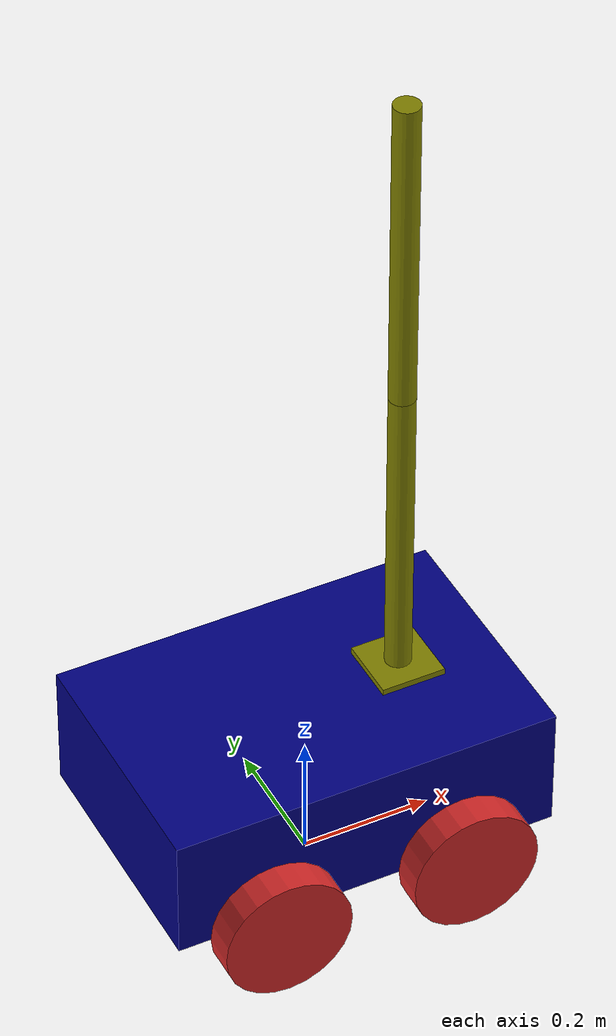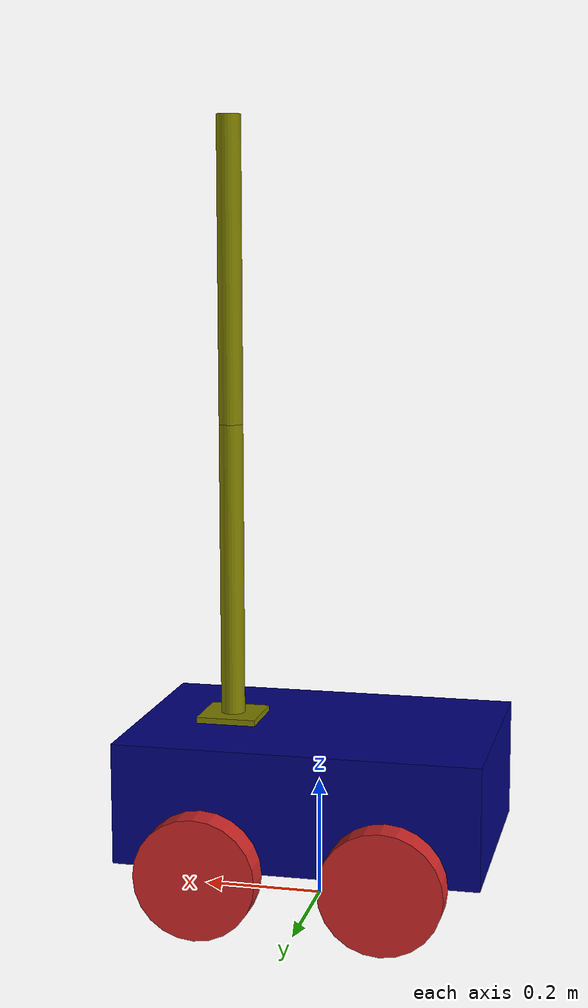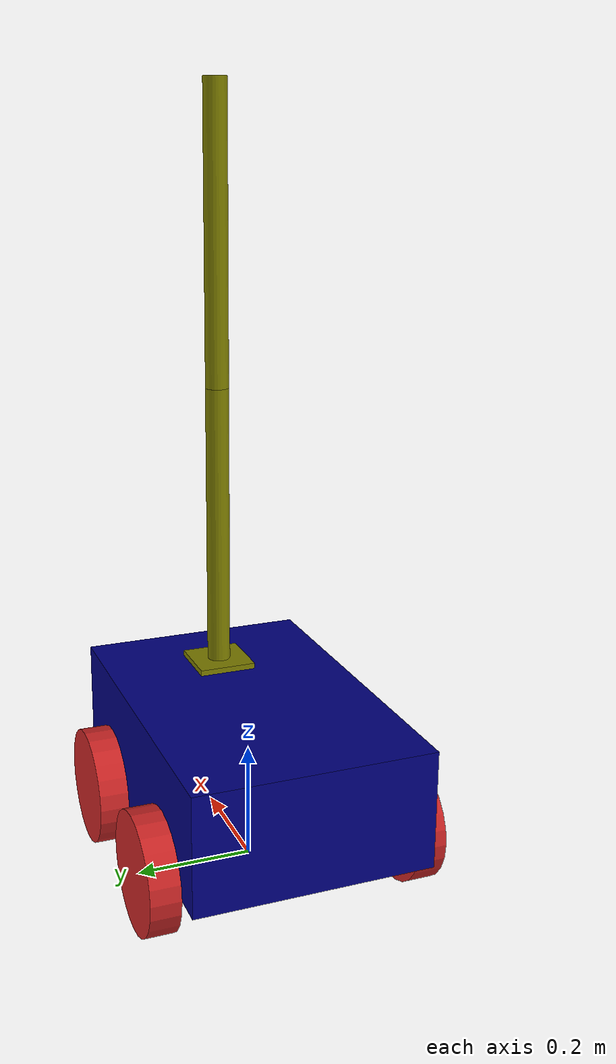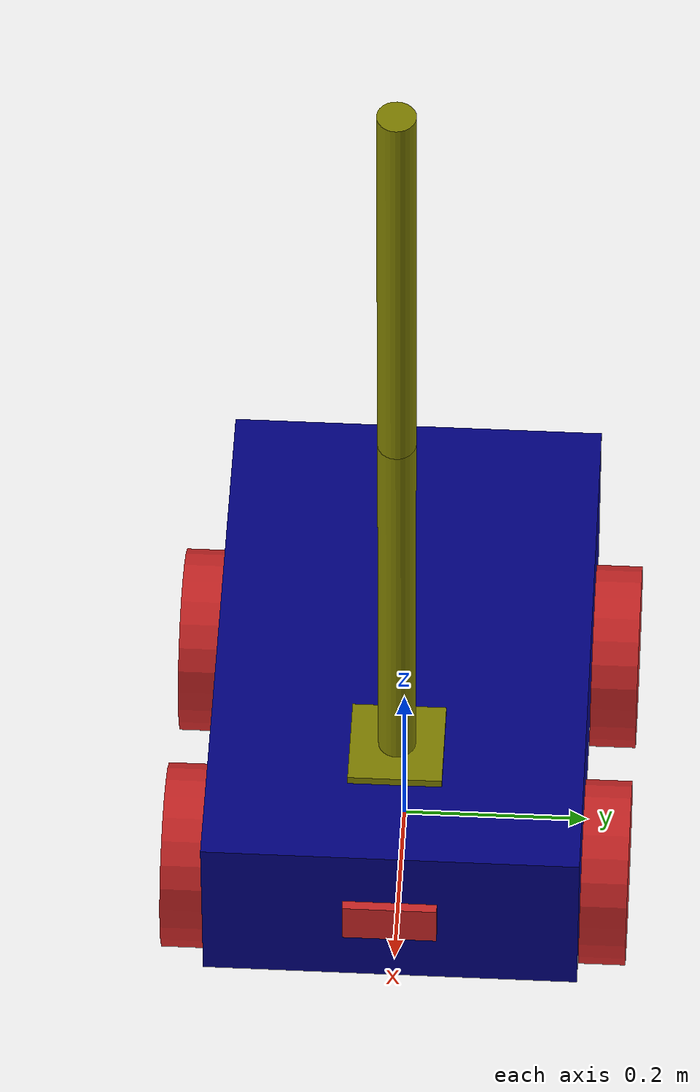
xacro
<?xml version="1.0"?>
<robot name="my_robot" xmlns:xacro="http://www.ros.org/wiki/xacro">

    <xacro:include filename="common_properties.xacro" />
    <xacro:include filename="mobile_base.xacro" />
    <xacro:include filename="mobile_base_gazebo.xacro" />
    <xacro:include filename="camera.xacro" />
    <xacro:include filename="arm.xacro"/>
    <xacro:include filename="arm_gazebo.xacro"/>

</robot>

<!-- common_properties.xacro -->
<robot xmlns:xacro="http://www.ros.org/wiki/xacro">

    <material name="blue">
        <color rgba="0 0 0.5 1" />
    </material>

    <material name="grey">
        <color rgba="0.5 0.5 0.5 1" />
    </material>

    <material name="orange">
        <color rgba="0.5 0.5 0.0 1" />
    </material>

    <xacro:macro name="box_inertia" params="m x y z o_xyz o_rpy">
        <inertial>
            <mass value="${m}" />
            <origin xyz="${o_xyz}" rpy="${o_rpy}" />
            <inertia ixx="${(m/12) * (y*y + z*z)}" ixy="0" ixz="0"
                     iyy="${(m/12) * (x*x + z*z)}" iyz="0"
                     izz="${(m/12) * (x*x + y*y)}" />
        </inertial>
    </xacro:macro>

    <xacro:macro name="cylinder_inertia" params="m r l o_xyz o_rpy">
        <inertial>
            <mass value="${m}" />
            <origin xyz="${o_xyz}" rpy="${o_rpy}" />
            <inertia ixx="${(m/12) * (3*r*r + l*l)}" ixy="0" ixz="0"
                     iyy="${(m/12) * (3*r*r + l*l)}" iyz="0"
                     izz="${(m/2) * (r*r)}" />
        </inertial>
    </xacro:macro>

    <xacro:macro name="sphere_inertia" params="m r o_xyz o_rpy">
        <inertial>
            <mass value="${m}" />
            <origin xyz="${o_xyz}" rpy="${o_rpy}" />
            <inertia ixx="${(2/5) * m * r * r}" ixy="0" ixz="0"
                     iyy="${(2/5) * m * r * r}" iyz="0"
                     izz="${(2/5) * m * r * r}" />
        </inertial>
    </xacro:macro>

</robot>

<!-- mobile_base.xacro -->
<robot xmlns:xacro="http://www.ros.org/wiki/xacro">

    <xacro:property name="base_length" value="0.6" />
    <xacro:property name="base_width" value="0.4" />
    <xacro:property name="base_height" value="0.2" />
    <xacro:property name="wheel_radius" value="0.1" />
    <xacro:property name="wheel_length" value="0.05" />

    <link name="imu_frame"/>

    <joint name="imu_joint" type="fixed">
        <parent link="base_link"/>
        <child link="imu_frame"/>
        <origin xyz="0.0 0.0 0.08" rpy="0.0 0.0 0.0"/>
    </joint>

    <link name="base_link">
        <visual>
            <geometry>
                <box size="${base_length} ${base_width} ${base_height}" />
            </geometry>
            <origin xyz="0 0 ${base_height / 2.0}" rpy="0 0 0" />
            <material name="blue" />
        </visual>
        <collision>
            <geometry>
                <box size="${base_length} ${base_width} ${base_height}" />
            </geometry>
            <origin xyz="0 0 ${base_height / 2.0}" rpy="0 0 0" />
        </collision>
        <xacro:box_inertia m="100.0" l="${2*base_length}" w="${2*base_width}" h="${2*base_height}"
                           xyz="0 0 ${base_height / 2.0}" rpy="0 0 0" />
    </link>

    <xacro:macro name="wheel_link" params="prefix">
        <link name="${prefix}_wheel_link">
            <visual>
                <geometry>
                    <cylinder radius="${wheel_radius}" length="${wheel_length}" />
                </geometry>
                <origin xyz="0 0 0" rpy="${pi / 2.0} 0 0" />
                <material name="red" />
            </visual>
            <collision>
                <geometry>
                    <cylinder radius="${wheel_radius}" length="${wheel_length}" />
                </geometry>
                <origin xyz="0 0 0" rpy="${pi / 2.0} 0 0" />
            </collision>
            <xacro:cylinder_inertia m="10.0" r="${2*wheel_radius}" h="${2*wheel_length}"
                                    xyz="0 0 0" rpy="${pi / 2.0} 0 0" />
        </link>
    </xacro:macro>

    <xacro:wheel_link prefix="right_back" />
    <xacro:wheel_link prefix="left_back" />
    <xacro:wheel_link prefix="right_front" />
    <xacro:wheel_link prefix="left_front" />

    <link name="base_footprint">
    </link>

    <joint name="base_right_back_wheel_joint" type="continuous">
        <parent link="base_link" />
        <child link="right_back_wheel_link" />
        <origin xyz="${-base_length / 4.0} ${-(base_width + wheel_length) / 2.0} 0" rpy="0 0 0" />
        <axis xyz="0 1 0" />
    </joint>

    <joint name="base_right_front_wheel_joint" type="continuous">
        <parent link="base_link" />
        <child link="right_front_wheel_link" />
        <origin xyz="${(base_length) / 4.0} ${-(base_width + wheel_length) / 2.0} 0" rpy="0 0 0" />
        <axis xyz="0 1 0" />
    </joint>

     <joint name="base_left_back_wheel_joint" type="continuous">
        <parent link="base_link" />
        <child link="left_back_wheel_link" />
        <origin xyz="${-base_length / 4.0} ${(base_width + wheel_length) / 2.0} 0" rpy="0 0 0" />
        <axis xyz="0 1 0" />
    </joint>

    <joint name="base_left_front_wheel_joint" type="continuous">
        <parent link="base_link" />
        <child link="left_front_wheel_link" />
        <origin xyz="${base_length / 4.0} ${(base_width + wheel_length) / 2.0} 0" rpy="0 0 0" />
        <axis xyz="0 1 0" />
    </joint>

    <joint name="base_footprint_joint" type="fixed">
        <parent link="base_footprint" />
        <child link="base_link" />
        <origin xyz="0 0 ${wheel_radius}" rpy="0 0 0" />
    </joint>

</robot>

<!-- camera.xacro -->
<robot xmlns:xacro="http://www.ros.org/wiki/xacro">

    <xacro:property name="camera_length" value="0.01" />
    <xacro:property name="camera_width" value="0.1" />
    <xacro:property name="camera_height" value="0.05" />

    <link name="camera_link">
        <visual>
            <geometry>
                <box size="${camera_length} ${camera_width} ${camera_height}" />
            </geometry>
            <material name="red" />
        </visual>
        <collision>
            <geometry>
                <box size="${camera_length} ${camera_width} ${camera_height}" />
            </geometry>
        </collision>
        <xacro:box_inertia m="0.1" l="${camera_length}" w="${camera_width}" h="${camera_height}"
                           xyz="0 0 0" rpy="0 0 0" />
    </link>

    <joint name="base_camera_joint" type="fixed">
        <parent link="base_link" />
        <child link="camera_link" />
        <origin xyz="${(base_length + camera_length) / 2.0} 0 ${base_height / 2.0}" rpy="0 0 0" />
    </joint>

    <gazebo reference="camera_link">
        <material>Gazebo/Red</material>
        <sensor name="camera_sensor" type="camera">
            <pose>0 0 0 0 0 0</pose>
            <visualize>true</visualize>
            <update_rate>10.0</update_rate>
            <plugin name="camera_controller" filename="libgazebo_ros_camera.so">
                <frame_name>camera_link</frame_name>
            </plugin>
        </sensor>
    </gazebo>

</robot>

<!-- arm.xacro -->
<robot xmlns:xacro="http://www.ros.org/wiki/xacro">

    <xacro:property name="arm_base_length" value="0.1" />
    <xacro:property name="arm_base_width" value="0.1" />
    <xacro:property name="arm_base_height" value="0.02" />
    <xacro:property name="forearm_radius" value="0.02" />
    <xacro:property name="forearm_length" value="0.5" />

    <link name="arm_base_link">
        <visual>
            <geometry>
                <box size="${arm_base_length} ${arm_base_width} ${arm_base_height}" />
            </geometry>
            <origin xyz="0 0 0" rpy="0 0 0" />
            <material name="orange" />
        </visual>
        <collision>
            <geometry>
                <box size="${arm_base_length} ${arm_base_width} ${arm_base_height}" />
            </geometry>
            <origin xyz="0 0 0" rpy="0 0 0" />
        </collision>
        <xacro:box_inertia m="500.0" x="${arm_base_length}" y="${arm_base_width}" z="${arm_base_height}"
                           o_xyz="0 0 0" o_rpy="0 0 0" />
    </link>

    <link name="forearm_link">
        <visual>
            <geometry>
                <cylinder radius="${forearm_radius}" length="${forearm_length}" />
            </geometry>
            <origin xyz="0 0 ${forearm_length/2}" rpy="0 0 0" />
            <material name="orange" />
        </visual>
        <collision>
            <geometry>
                <cylinder radius="${forearm_radius}" length="${forearm_length}" />
            </geometry>
            <origin xyz="0 0 ${forearm_length/2}" rpy="0 0 0" />
        </collision>
        <xacro:cylinder_inertia m="1.0" r="${forearm_radius}" l="${forearm_length}"
                                o_xyz="0 0 ${forearm_length/2}" o_rpy="0 0 0" />
    </link>

    <link name="wrist_link">
        <visual>
            <geometry>
                <cylinder radius="${forearm_radius}" length="${forearm_length}" />
            </geometry>
            <origin xyz="0 0 ${forearm_length/2}" rpy="0 0 0" />
            <material name="orange" />
        </visual>
        <collision>
            <geometry>
                <cylinder radius="${forearm_radius}" length="${forearm_length}" />
            </geometry>
            <origin xyz="0 0 ${forearm_length/2}" rpy="0 0 0" />
        </collision>
        <xacro:cylinder_inertia m="1.0" r="${forearm_radius}" l="${forearm_length}"
                                o_xyz="0 0 ${forearm_length/2}" o_rpy="0 0 0" />
    </link>

    <joint name="arm_base_joint" type="fixed">
        <parent link="base_link" />
        <child link="arm_base_link" />
        <origin xyz="${base_length/4} 0 ${base_height}" rpy="0 0 0"/>
    </joint>

    <joint name="forearm_arm_base_joint" type="revolute">
        <parent link="arm_base_link" />
        <child link="forearm_link" />
        <origin xyz="0 0 0" rpy="0 0 0" />
        <limit effort="1000.0" lower="-1.57" upper="1.57" velocity="0.5"/>
        <axis xyz="0 1 0" />
    </joint>

    <joint name="forearm_wrist_joint" type="revolute">
        <parent link="forearm_link" />
        <child link="wrist_link" />
        <origin xyz="0 0 ${forearm_length}" rpy="0 0 0" />
        <limit effort="1000.0" lower="-1.57" upper="1.57" velocity="0.5"/>
        <axis xyz="0 1 0" />
    </joint>

</robot>
